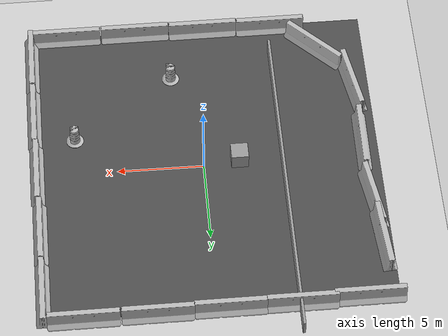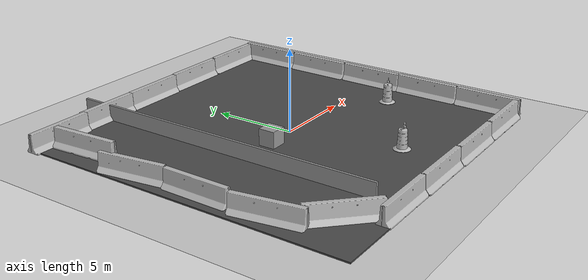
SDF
<sdf version="1.6">
 <world name="default">
  <light name="sun" type="directional">
   <pose>0 0 10 0 -0 0</pose>
   <diffuse>0.8 0.8 0.8 1</diffuse>
   <specular>0.2 0.2 0.2 1</specular>
   <attenuation>
    <range>1000</range>
    <constant>0.9</constant>
    <linear>0.01</linear>
    <quadratic>0.001</quadratic>
   </attenuation>
   <direction>-0.5 0.1 -0.9</direction>
  </light>
  <model name="Wall_01">
   <static>1</static>
   <link name="Wall_0">
    <collision name="Wall_0_Collision">
     <geometry><box><size>20 0.15 1</size></box></geometry>
     <pose>0 0 0.5 0 -0 0</pose>
    </collision>
    <visual name="Wall_0_Visual">
     <pose>0 0 0.5 0 -0 0</pose>
     <geometry><box><size>20 0.15 1</size></box></geometry>
     <material>
      <script><uri>file://media/materials/scripts/gazebo.material</uri><name>Gazebo/Grey</name></script>
      <ambient>1 1 1 1</ambient>
     </material>
    </visual>
    <pose>-4.6 1.725 0 0 0 -1.5708</pose>
   </link>
  </model>
  <model name="ground_plane">
   <static>1</static>
   <link name="link">
    <collision name="collision">
     <geometry><plane><normal>0 0 1</normal><size>100 100</size></plane></geometry>
     <surface><friction><ode><mu>100</mu><mu2>50</mu2></ode></friction></surface>
    </collision>
    <visual name="visual">
     <cast_shadows>0</cast_shadows>
     <geometry><plane><normal>0 0 1</normal><size>100 100</size></plane></geometry>
     <material>
      <script><uri>file://media/materials/scripts/gazebo.material</uri><name>Gazebo/Grey</name></script>
     </material>
    </visual>
    <velocity_decay><linear>0</linear><angular>0</angular></velocity_decay>
   </link>
  </model>
  <physics name="default_physics" default="0" type="ode">
   <max_step_size>0.01</max_step_size>
   <real_time_factor>1</real_time_factor>
   <real_time_update_rate>100</real_time_update_rate>
  </physics>
  <scene><ambient>0.4 0.4 0.4 1</ambient><background>0.7 0.7 0.7 1</background><shadows>1</shadows></scene>
  <model name="jersey_barrier">
   <static>1</static>
   <link name="link">
    <visual name="visual">
     <geometry><mesh><uri>model://jersey_barrier/meshes/jersey_barrier.dae</uri></mesh></geometry>
    </visual>
    <collision name="upright">
     <pose>0 0 0.5715 0 -0 0</pose>
     <geometry><box><size>4.06542 0.3063 1.143</size></box></geometry>
    </collision>
    <collision name="base">
     <pose>0 0 0.032258 0 -0 0</pose>
     <geometry><box><size>4.06542 0.8107 0.064516</size></box></geometry>
    </collision>
    <collision name="base2">
     <pose>0 0 0.1 0 -0 0</pose>
     <geometry><box><size>4.06542 0.65 0.1</size></box></geometry>
    </collision>
    <collision name="base3">
     <pose>0 0 0.2 0 -0 0</pose>
     <geometry><box><size>4.06542 0.5 0.1</size></box></geometry>
    </collision>
    <collision name="left-angle">
     <pose>0 -0.224 0.2401 0.9 -0 0</pose>
     <geometry><box><size>4.06542 0.5 0.064516</size></box></geometry>
    </collision>
    <collision name="right-angle">
     <pose>0 0.224 0.2401 -0.9 0 0</pose>
     <geometry><box><size>4.06542 0.5 0.064516</size></box></geometry>
    </collision>
    <velocity_decay><linear>0</linear><angular>0</angular></velocity_decay>
   </link>
   <pose>-4.80542 -9.81056 0 0 -0 0</pose>
  </model>
  <model name="jersey_barrier_0">
   <static>1</static>
   <link name="link">
    <visual name="visual">
     <geometry><mesh><uri>model://jersey_barrier/meshes/jersey_barrier.dae</uri></mesh></geometry>
    </visual>
    <collision name="upright">
     <pose>0 0 0.5715 0 -0 0</pose>
     <geometry><box><size>4.06542 0.3063 1.143</size></box></geometry>
    </collision>
    <collision name="base">
     <pose>0 0 0.032258 0 -0 0</pose>
     <geometry><box><size>4.06542 0.8107 0.064516</size></box></geometry>
    </collision>
    <collision name="base2">
     <pose>0 0 0.1 0 -0 0</pose>
     <geometry><box><size>4.06542 0.65 0.1</size></box></geometry>
    </collision>
    <collision name="base3">
     <pose>0 0 0.2 0 -0 0</pose>
     <geometry><box><size>4.06542 0.5 0.1</size></box></geometry>
    </collision>
    <collision name="left-angle">
     <pose>0 -0.224 0.2401 0.9 -0 0</pose>
     <geometry><box><size>4.06542 0.5 0.064516</size></box></geometry>
    </collision>
    <collision name="right-angle">
     <pose>0 0.224 0.2401 -0.9 0 0</pose>
     <geometry><box><size>4.06542 0.5 0.064516</size></box></geometry>
    </collision>
    <velocity_decay><linear>0</linear><angular>0</angular></velocity_decay>
   </link>
   <pose>-0.718563 -9.84902 0 0 -0 0</pose>
  </model>
  <model name="jersey_barrier_1">
   <static>1</static>
   <link name="link">
    <visual name="visual">
     <geometry><mesh><uri>model://jersey_barrier/meshes/jersey_barrier.dae</uri></mesh></geometry>
    </visual>
    <collision name="upright">
     <pose>0 0 0.5715 0 -0 0</pose>
     <geometry><box><size>4.06542 0.3063 1.143</size></box></geometry>
    </collision>
    <collision name="base">
     <pose>0 0 0.032258 0 -0 0</pose>
     <geometry><box><size>4.06542 0.8107 0.064516</size></box></geometry>
    </collision>
    <collision name="base2">
     <pose>0 0 0.1 0 -0 0</pose>
     <geometry><box><size>4.06542 0.65 0.1</size></box></geometry>
    </collision>
    <collision name="base3">
     <pose>0 0 0.2 0 -0 0</pose>
     <geometry><box><size>4.06542 0.5 0.1</size></box></geometry>
    </collision>
    <collision name="left-angle">
     <pose>0 -0.224 0.2401 0.9 -0 0</pose>
     <geometry><box><size>4.06542 0.5 0.064516</size></box></geometry>
    </collision>
    <collision name="right-angle">
     <pose>0 0.224 0.2401 -0.9 0 0</pose>
     <geometry><box><size>4.06542 0.5 0.064516</size></box></geometry>
    </collision>
    <velocity_decay><linear>0</linear><angular>0</angular></velocity_decay>
   </link>
   <pose>3.37219 -9.89534 0 0 -0 0</pose>
  </model>
  <model name="jersey_barrier_2">
   <static>1</static>
   <link name="link">
    <visual name="visual">
     <geometry><mesh><uri>model://jersey_barrier/meshes/jersey_barrier.dae</uri></mesh></geometry>
    </visual>
    <collision name="upright">
     <pose>0 0 0.5715 0 -0 0</pose>
     <geometry><box><size>4.06542 0.3063 1.143</size></box></geometry>
    </collision>
    <collision name="base">
     <pose>0 0 0.032258 0 -0 0</pose>
     <geometry><box><size>4.06542 0.8107 0.064516</size></box></geometry>
    </collision>
    <collision name="base2">
     <pose>0 0 0.1 0 -0 0</pose>
     <geometry><box><size>4.06542 0.65 0.1</size></box></geometry>
    </collision>
    <collision name="base3">
     <pose>0 0 0.2 0 -0 0</pose>
     <geometry><box><size>4.06542 0.5 0.1</size></box></geometry>
    </collision>
    <collision name="left-angle">
     <pose>0 -0.224 0.2401 0.9 -0 0</pose>
     <geometry><box><size>4.06542 0.5 0.064516</size></box></geometry>
    </collision>
    <collision name="right-angle">
     <pose>0 0.224 0.2401 -0.9 0 0</pose>
     <geometry><box><size>4.06542 0.5 0.064516</size></box></geometry>
    </collision>
    <velocity_decay><linear>0</linear><angular>0</angular></velocity_decay>
   </link>
   <pose>7.50493 -9.88533 0 0 -0 0</pose>
  </model>
  <model name="jersey_barrier_3">
   <static>1</static>
   <link name="link">
    <visual name="visual">
     <geometry><mesh><uri>model://jersey_barrier/meshes/jersey_barrier.dae</uri></mesh></geometry>
    </visual>
    <collision name="upright">
     <pose>0 0 0.5715 0 -0 0</pose>
     <geometry><box><size>4.06542 0.3063 1.143</size></box></geometry>
    </collision>
    <collision name="base">
     <pose>0 0 0.032258 0 -0 0</pose>
     <geometry><box><size>4.06542 0.8107 0.064516</size></box></geometry>
    </collision>
    <collision name="base2">
     <pose>0 0 0.1 0 -0 0</pose>
     <geometry><box><size>4.06542 0.65 0.1</size></box></geometry>
    </collision>
    <collision name="base3">
     <pose>0 0 0.2 0 -0 0</pose>
     <geometry><box><size>4.06542 0.5 0.1</size></box></geometry>
    </collision>
    <collision name="left-angle">
     <pose>0 -0.224 0.2401 0.9 -0 0</pose>
     <geometry><box><size>4.06542 0.5 0.064516</size></box></geometry>
    </collision>
    <collision name="right-angle">
     <pose>0 0.224 0.2401 -0.9 0 0</pose>
     <geometry><box><size>4.06542 0.5 0.064516</size></box></geometry>
    </collision>
    <velocity_decay><linear>0</linear><angular>0</angular></velocity_decay>
   </link>
   <pose>-4.71095 9.93241 0 0 -0 0</pose>
  </model>
  <model name="jersey_barrier_4">
   <static>1</static>
   <link name="link">
    <visual name="visual">
     <geometry><mesh><uri>model://jersey_barrier/meshes/jersey_barrier.dae</uri></mesh></geometry>
    </visual>
    <collision name="upright">
     <pose>0 0 0.5715 0 -0 0</pose>
     <geometry><box><size>4.06542 0.3063 1.143</size></box></geometry>
    </collision>
    <collision name="base">
     <pose>0 0 0.032258 0 -0 0</pose>
     <geometry><box><size>4.06542 0.8107 0.064516</size></box></geometry>
    </collision>
    <collision name="base2">
     <pose>0 0 0.1 0 -0 0</pose>
     <geometry><box><size>4.06542 0.65 0.1</size></box></geometry>
    </collision>
    <collision name="base3">
     <pose>0 0 0.2 0 -0 0</pose>
     <geometry><box><size>4.06542 0.5 0.1</size></box></geometry>
    </collision>
    <collision name="left-angle">
     <pose>0 -0.224 0.2401 0.9 -0 0</pose>
     <geometry><box><size>4.06542 0.5 0.064516</size></box></geometry>
    </collision>
    <collision name="right-angle">
     <pose>0 0.224 0.2401 -0.9 0 0</pose>
     <geometry><box><size>4.06542 0.5 0.064516</size></box></geometry>
    </collision>
    <velocity_decay><linear>0</linear><angular>0</angular></velocity_decay>
   </link>
   <pose>-0.693632 9.96519 0 0 -0 0</pose>
  </model>
  <model name="jersey_barrier_5">
   <static>1</static>
   <link name="link">
    <visual name="visual">
     <geometry><mesh><uri>model://jersey_barrier/meshes/jersey_barrier.dae</uri></mesh></geometry>
    </visual>
    <collision name="upright">
     <pose>0 0 0.5715 0 -0 0</pose>
     <geometry><box><size>4.06542 0.3063 1.143</size></box></geometry>
    </collision>
    <collision name="base">
     <pose>0 0 0.032258 0 -0 0</pose>
     <geometry><box><size>4.06542 0.8107 0.064516</size></box></geometry>
    </collision>
    <collision name="base2">
     <pose>0 0 0.1 0 -0 0</pose>
     <geometry><box><size>4.06542 0.65 0.1</size></box></geometry>
    </collision>
    <collision name="base3">
     <pose>0 0 0.2 0 -0 0</pose>
     <geometry><box><size>4.06542 0.5 0.1</size></box></geometry>
    </collision>
    <collision name="left-angle">
     <pose>0 -0.224 0.2401 0.9 -0 0</pose>
     <geometry><box><size>4.06542 0.5 0.064516</size></box></geometry>
    </collision>
    <collision name="right-angle">
     <pose>0 0.224 0.2401 -0.9 0 0</pose>
     <geometry><box><size>4.06542 0.5 0.064516</size></box></geometry>
    </collision>
    <velocity_decay><linear>0</linear><angular>0</angular></velocity_decay>
   </link>
   <pose>3.35429 10.0303 0 0 -0 0</pose>
  </model>
  <model name="jersey_barrier_6">
   <static>1</static>
   <link name="link">
    <visual name="visual">
     <geometry><mesh><uri>model://jersey_barrier/meshes/jersey_barrier.dae</uri></mesh></geometry>
    </visual>
    <collision name="upright">
     <pose>0 0 0.5715 0 -0 0</pose>
     <geometry><box><size>4.06542 0.3063 1.143</size></box></geometry>
    </collision>
    <collision name="base">
     <pose>0 0 0.032258 0 -0 0</pose>
     <geometry><box><size>4.06542 0.8107 0.064516</size></box></geometry>
    </collision>
    <collision name="base2">
     <pose>0 0 0.1 0 -0 0</pose>
     <geometry><box><size>4.06542 0.65 0.1</size></box></geometry>
    </collision>
    <collision name="base3">
     <pose>0 0 0.2 0 -0 0</pose>
     <geometry><box><size>4.06542 0.5 0.1</size></box></geometry>
    </collision>
    <collision name="left-angle">
     <pose>0 -0.224 0.2401 0.9 -0 0</pose>
     <geometry><box><size>4.06542 0.5 0.064516</size></box></geometry>
    </collision>
    <collision name="right-angle">
     <pose>0 0.224 0.2401 -0.9 0 0</pose>
     <geometry><box><size>4.06542 0.5 0.064516</size></box></geometry>
    </collision>
    <velocity_decay><linear>0</linear><angular>0</angular></velocity_decay>
   </link>
   <pose>7.48175 10.0592 0 0 -0 0</pose>
  </model>
  <model name="jersey_barrier_9">
   <static>1</static>
   <link name="link">
    <visual name="visual">
     <geometry><mesh><uri>model://jersey_barrier/meshes/jersey_barrier.dae</uri></mesh></geometry>
    </visual>
    <collision name="upright">
     <pose>0 0 0.5715 0 -0 0</pose>
     <geometry><box><size>4.06542 0.3063 1.143</size></box></geometry>
    </collision>
    <collision name="base">
     <pose>0 0 0.032258 0 -0 0</pose>
     <geometry><box><size>4.06542 0.8107 0.064516</size></box></geometry>
    </collision>
    <collision name="base2">
     <pose>0 0 0.1 0 -0 0</pose>
     <geometry><box><size>4.06542 0.65 0.1</size></box></geometry>
    </collision>
    <collision name="base3">
     <pose>0 0 0.2 0 -0 0</pose>
     <geometry><box><size>4.06542 0.5 0.1</size></box></geometry>
    </collision>
    <collision name="left-angle">
     <pose>0 -0.224 0.2401 0.9 -0 0</pose>
     <geometry><box><size>4.06542 0.5 0.064516</size></box></geometry>
    </collision>
    <collision name="right-angle">
     <pose>0 0.224 0.2401 -0.9 0 0</pose>
     <geometry><box><size>4.06542 0.5 0.064516</size></box></geometry>
    </collision>
    <velocity_decay><linear>0</linear><angular>0</angular></velocity_decay>
   </link>
   <pose>-9.27794 -5.09766 0 0 0 -1.4</pose>
  </model>
  <model name="jersey_barrier_10">
   <static>1</static>
   <link name="link">
    <visual name="visual">
     <geometry><mesh><uri>model://jersey_barrier/meshes/jersey_barrier.dae</uri></mesh></geometry>
    </visual>
    <collision name="upright">
     <pose>0 0 0.5715 0 -0 0</pose>
     <geometry><box><size>4.06542 0.3063 1.143</size></box></geometry>
    </collision>
    <collision name="base">
     <pose>0 0 0.032258 0 -0 0</pose>
     <geometry><box><size>4.06542 0.8107 0.064516</size></box></geometry>
    </collision>
    <collision name="base2">
     <pose>0 0 0.1 0 -0 0</pose>
     <geometry><box><size>4.06542 0.65 0.1</size></box></geometry>
    </collision>
    <collision name="base3">
     <pose>0 0 0.2 0 -0 0</pose>
     <geometry><box><size>4.06542 0.5 0.1</size></box></geometry>
    </collision>
    <collision name="left-angle">
     <pose>0 -0.224 0.2401 0.9 -0 0</pose>
     <geometry><box><size>4.06542 0.5 0.064516</size></box></geometry>
    </collision>
    <collision name="right-angle">
     <pose>0 0.224 0.2401 -0.9 0 0</pose>
     <geometry><box><size>4.06542 0.5 0.064516</size></box></geometry>
    </collision>
    <velocity_decay><linear>0</linear><angular>0</angular></velocity_decay>
   </link>
   <pose>-9.36321 -0.883079 0 0 -0 1.56</pose>
  </model>
  <model name="jersey_barrier_11">
   <static>1</static>
   <link name="link">
    <visual name="visual">
     <geometry><mesh><uri>model://jersey_barrier/meshes/jersey_barrier.dae</uri></mesh></geometry>
    </visual>
    <collision name="upright">
     <pose>0 0 0.5715 0 -0 0</pose>
     <geometry><box><size>4.06542 0.3063 1.143</size></box></geometry>
    </collision>
    <collision name="base">
     <pose>0 0 0.032258 0 -0 0</pose>
     <geometry><box><size>4.06542 0.8107 0.064516</size></box></geometry>
    </collision>
    <collision name="base2">
     <pose>0 0 0.1 0 -0 0</pose>
     <geometry><box><size>4.06542 0.65 0.1</size></box></geometry>
    </collision>
    <collision name="base3">
     <pose>0 0 0.2 0 -0 0</pose>
     <geometry><box><size>4.06542 0.5 0.1</size></box></geometry>
    </collision>
    <collision name="left-angle">
     <pose>0 -0.224 0.2401 0.9 -0 0</pose>
     <geometry><box><size>4.06542 0.5 0.064516</size></box></geometry>
    </collision>
    <collision name="right-angle">
     <pose>0 0.224 0.2401 -0.9 0 0</pose>
     <geometry><box><size>4.06542 0.5 0.064516</size></box></geometry>
    </collision>
    <velocity_decay><linear>0</linear><angular>0</angular></velocity_decay>
   </link>
   <pose>-9.5335 3.23481 0 0 -0 1.72</pose>
  </model>
  <model name="jersey_barrier_12">
   <static>1</static>
   <link name="link">
    <visual name="visual">
     <geometry><mesh><uri>model://jersey_barrier/meshes/jersey_barrier.dae</uri></mesh></geometry>
    </visual>
    <collision name="upright">
     <pose>0 0 0.5715 0 -0 0</pose>
     <geometry><box><size>4.06542 0.3063 1.143</size></box></geometry>
    </collision>
    <collision name="base">
     <pose>0 0 0.032258 0 -0 0</pose>
     <geometry><box><size>4.06542 0.8107 0.064516</size></box></geometry>
    </collision>
    <collision name="base2">
     <pose>0 0 0.1 0 -0 0</pose>
     <geometry><box><size>4.06542 0.65 0.1</size></box></geometry>
    </collision>
    <collision name="base3">
     <pose>0 0 0.2 0 -0 0</pose>
     <geometry><box><size>4.06542 0.5 0.1</size></box></geometry>
    </collision>
    <collision name="left-angle">
     <pose>0 -0.224 0.2401 0.9 -0 0</pose>
     <geometry><box><size>4.06542 0.5 0.064516</size></box></geometry>
    </collision>
    <collision name="right-angle">
     <pose>0 0.224 0.2401 -0.9 0 0</pose>
     <geometry><box><size>4.06542 0.5 0.064516</size></box></geometry>
    </collision>
    <velocity_decay><linear>0</linear><angular>0</angular></velocity_decay>
   </link>
   <pose>9.66231 -8.08123 0 0 -0 1.56</pose>
  </model>
  <model name="jersey_barrier_14">
   <static>1</static>
   <link name="link">
    <visual name="visual">
     <geometry><mesh><uri>model://jersey_barrier/meshes/jersey_barrier.dae</uri></mesh></geometry>
    </visual>
    <collision name="upright">
     <pose>0 0 0.5715 0 -0 0</pose>
     <geometry><box><size>4.06542 0.3063 1.143</size></box></geometry>
    </collision>
    <collision name="base">
     <pose>0 0 0.032258 0 -0 0</pose>
     <geometry><box><size>4.06542 0.8107 0.064516</size></box></geometry>
    </collision>
    <collision name="base2">
     <pose>0 0 0.1 0 -0 0</pose>
     <geometry><box><size>4.06542 0.65 0.1</size></box></geometry>
    </collision>
    <collision name="base3">
     <pose>0 0 0.2 0 -0 0</pose>
     <geometry><box><size>4.06542 0.5 0.1</size></box></geometry>
    </collision>
    <collision name="left-angle">
     <pose>0 -0.224 0.2401 0.9 -0 0</pose>
     <geometry><box><size>4.06542 0.5 0.064516</size></box></geometry>
    </collision>
    <collision name="right-angle">
     <pose>0 0.224 0.2401 -0.9 0 0</pose>
     <geometry><box><size>4.06542 0.5 0.064516</size></box></geometry>
    </collision>
    <velocity_decay><linear>0</linear><angular>0</angular></velocity_decay>
   </link>
   <pose>-9.65 6.48223 0.580917 0 -0 1.64415</pose>
  </model>
  <model name="jersey_barrier_15">
   <static>1</static>
   <link name="link">
    <visual name="visual">
     <geometry><mesh><uri>model://jersey_barrier/meshes/jersey_barrier.dae</uri></mesh></geometry>
    </visual>
    <collision name="upright">
     <pose>0 0 0.5715 0 -0 0</pose>
     <geometry><box><size>4.06542 0.3063 1.143</size></box></geometry>
    </collision>
    <collision name="base">
     <pose>0 0 0.032258 0 -0 0</pose>
     <geometry><box><size>4.06542 0.8107 0.064516</size></box></geometry>
    </collision>
    <collision name="base2">
     <pose>0 0 0.1 0 -0 0</pose>
     <geometry><box><size>4.06542 0.65 0.1</size></box></geometry>
    </collision>
    <collision name="base3">
     <pose>0 0 0.2 0 -0 0</pose>
     <geometry><box><size>4.06542 0.5 0.1</size></box></geometry>
    </collision>
    <collision name="left-angle">
     <pose>0 -0.224 0.2401 0.9 -0 0</pose>
     <geometry><box><size>4.06542 0.5 0.064516</size></box></geometry>
    </collision>
    <collision name="right-angle">
     <pose>0 0.224 0.2401 -0.9 0 0</pose>
     <geometry><box><size>4.06542 0.5 0.064516</size></box></geometry>
    </collision>
    <velocity_decay><linear>0</linear><angular>0</angular></velocity_decay>
   </link>
   <pose>-7.33465 -8.04516 0 0 -0 2.36</pose>
  </model>
  <model name="Construction Barrel">
   <link name="link">
    <inertial>
     <pose>0 0 0.4 0 -0 0</pose>
     <mass>500</mass>
     <inertia><ixx>51.2096</ixx><iyy>51.2096</iyy><izz>25</izz><ixy>0</ixy><ixz>0</ixz><iyz>0</iyz></inertia>
    </inertial>
    <collision name="collision">
     <geometry><mesh><uri>model://construction_barrel/meshes/construction_barrel.dae</uri></mesh></geometry>
    </collision>
    <visual name="visual">
     <geometry><mesh><uri>model://construction_barrel/meshes/construction_barrel.dae</uri></mesh></geometry>
    </visual>
    <velocity_decay><linear>0</linear><angular>0</angular></velocity_decay>
   </link>
   <pose>7.37004 -2.39537 0.049886 -0.000111 -0.000447 0.378154</pose>
   <static>0</static>
  </model>
  <model name="Construction Barrel_0">
   <link name="link">
    <inertial>
     <pose>0 0 0.4 0 -0 0</pose>
     <mass>500</mass>
     <inertia><ixx>51.2096</ixx><iyy>51.2096</iyy><izz>25</izz><ixy>0</ixy><ixz>0</ixz><iyz>0</iyz></inertia>
    </inertial>
    <collision name="collision">
     <geometry><mesh><uri>model://construction_barrel/meshes/construction_barrel.dae</uri></mesh></geometry>
    </collision>
    <visual name="visual">
     <geometry><mesh><uri>model://construction_barrel/meshes/construction_barrel.dae</uri></mesh></geometry>
    </visual>
    <velocity_decay><linear>0</linear><angular>0</angular></velocity_decay>
   </link>
   <pose>1.45188 -6.51098 0.049913 -0.00017 -0.000347 -0.000381</pose>
   <static>0</static>
  </model>
  <model name="asphalt_plane">
   <static>1</static>
   <link name="link">
    <collision name="collision"><geometry><box><size>20 20 0.1</size></box></geometry></collision>
    <visual name="visual">
     <cast_shadows>0</cast_shadows>
     <geometry><box><size>20 20 0.1</size></box></geometry>
     <material>
      <script>
       <uri>model://asphalt_plane/materials/scripts</uri>
       <uri>model://asphalt_plane/materials/textures</uri>
       <name>vrc/asphalt</name>
      </script>
     </material>
    </visual>
    <velocity_decay><linear>0</linear><angular>0</angular></velocity_decay>
   </link>
   <pose>-0.252419 -0.159416 0 0 -0 0</pose>
  </model>
  <gravity>0 0 -9.8</gravity>
  <magnetic_field>6e-06 2.3e-05 -4.2e-05</magnetic_field>
  <atmosphere type="adiabatic"/>
  <spherical_coordinates>
   <surface_model>EARTH_WGS84</surface_model>
   <latitude_deg>0</latitude_deg>
   <longitude_deg>0</longitude_deg>
   <elevation>0</elevation>
   <heading_deg>0</heading_deg>
  </spherical_coordinates>
  <model name="jersey_barrier_12_clone">
   <static>1</static>
   <link name="link">
    <visual name="visual">
     <geometry><mesh><uri>model://jersey_barrier/meshes/jersey_barrier.dae</uri></mesh></geometry>
    </visual>
    <collision name="upright">
     <pose>0 0 0.5715 0 -0 0</pose>
     <geometry><box><size>4.06542 0.3063 1.143</size></box></geometry>
    </collision>
    <collision name="base">
     <pose>0 0 0.032258 0 -0 0</pose>
     <geometry><box><size>4.06542 0.8107 0.064516</size></box></geometry>
    </collision>
    <collision name="base2">
     <pose>0 0 0.1 0 -0 0</pose>
     <geometry><box><size>4.06542 0.65 0.1</size></box></geometry>
    </collision>
    <collision name="base3">
     <pose>0 0 0.2 0 -0 0</pose>
     <geometry><box><size>4.06542 0.5 0.1</size></box></geometry>
    </collision>
    <collision name="left-angle">
     <pose>0 -0.224 0.2401 0.9 -0 0</pose>
     <geometry><box><size>4.06542 0.5 0.064516</size></box></geometry>
    </collision>
    <collision name="right-angle">
     <pose>0 0.224 0.2401 -0.9 0 0</pose>
     <geometry><box><size>4.06542 0.5 0.064516</size></box></geometry>
    </collision>
    <velocity_decay><linear>0</linear><angular>0</angular></velocity_decay>
   </link>
   <pose>9.69789 -3.98159 0 0 -0 1.56</pose>
  </model>
  <model name="jersey_barrier_12_clone_0">
   <static>1</static>
   <link name="link">
    <visual name="visual">
     <geometry><mesh><uri>model://jersey_barrier/meshes/jersey_barrier.dae</uri></mesh></geometry>
    </visual>
    <collision name="upright">
     <pose>0 0 0.5715 0 -0 0</pose>
     <geometry><box><size>4.06542 0.3063 1.143</size></box></geometry>
    </collision>
    <collision name="base">
     <pose>0 0 0.032258 0 -0 0</pose>
     <geometry><box><size>4.06542 0.8107 0.064516</size></box></geometry>
    </collision>
    <collision name="base2">
     <pose>0 0 0.1 0 -0 0</pose>
     <geometry><box><size>4.06542 0.65 0.1</size></box></geometry>
    </collision>
    <collision name="base3">
     <pose>0 0 0.2 0 -0 0</pose>
     <geometry><box><size>4.06542 0.5 0.1</size></box></geometry>
    </collision>
    <collision name="left-angle">
     <pose>0 -0.224 0.2401 0.9 -0 0</pose>
     <geometry><box><size>4.06542 0.5 0.064516</size></box></geometry>
    </collision>
    <collision name="right-angle">
     <pose>0 0.224 0.2401 -0.9 0 0</pose>
     <geometry><box><size>4.06542 0.5 0.064516</size></box></geometry>
    </collision>
    <velocity_decay><linear>0</linear><angular>0</angular></velocity_decay>
   </link>
   <pose>9.68226 0.063707 0 0 -0 1.56</pose>
  </model>
  <model name="jersey_barrier_12_clone_1">
   <static>1</static>
   <link name="link">
    <visual name="visual">
     <geometry><mesh><uri>model://jersey_barrier/meshes/jersey_barrier.dae</uri></mesh></geometry>
    </visual>
    <collision name="upright">
     <pose>0 0 0.5715 0 -0 0</pose>
     <geometry><box><size>4.06542 0.3063 1.143</size></box></geometry>
    </collision>
    <collision name="base">
     <pose>0 0 0.032258 0 -0 0</pose>
     <geometry><box><size>4.06542 0.8107 0.064516</size></box></geometry>
    </collision>
    <collision name="base2">
     <pose>0 0 0.1 0 -0 0</pose>
     <geometry><box><size>4.06542 0.65 0.1</size></box></geometry>
    </collision>
    <collision name="base3">
     <pose>0 0 0.2 0 -0 0</pose>
     <geometry><box><size>4.06542 0.5 0.1</size></box></geometry>
    </collision>
    <collision name="left-angle">
     <pose>0 -0.224 0.2401 0.9 -0 0</pose>
     <geometry><box><size>4.06542 0.5 0.064516</size></box></geometry>
    </collision>
    <collision name="right-angle">
     <pose>0 0.224 0.2401 -0.9 0 0</pose>
     <geometry><box><size>4.06542 0.5 0.064516</size></box></geometry>
    </collision>
    <velocity_decay><linear>0</linear><angular>0</angular></velocity_decay>
   </link>
   <pose>9.65612 4.16324 0 0 -0 1.56</pose>
  </model>
  <model name="jersey_barrier_12_clone_2">
   <static>1</static>
   <link name="link">
    <visual name="visual">
     <geometry><mesh><uri>model://jersey_barrier/meshes/jersey_barrier.dae</uri></mesh></geometry>
    </visual>
    <collision name="upright">
     <pose>0 0 0.5715 0 -0 0</pose>
     <geometry><box><size>4.06542 0.3063 1.143</size></box></geometry>
    </collision>
    <collision name="base">
     <pose>0 0 0.032258 0 -0 0</pose>
     <geometry><box><size>4.06542 0.8107 0.064516</size></box></geometry>
    </collision>
    <collision name="base2">
     <pose>0 0 0.1 0 -0 0</pose>
     <geometry><box><size>4.06542 0.65 0.1</size></box></geometry>
    </collision>
    <collision name="base3">
     <pose>0 0 0.2 0 -0 0</pose>
     <geometry><box><size>4.06542 0.5 0.1</size></box></geometry>
    </collision>
    <collision name="left-angle">
     <pose>0 -0.224 0.2401 0.9 -0 0</pose>
     <geometry><box><size>4.06542 0.5 0.064516</size></box></geometry>
    </collision>
    <collision name="right-angle">
     <pose>0 0.224 0.2401 -0.9 0 0</pose>
     <geometry><box><size>4.06542 0.5 0.064516</size></box></geometry>
    </collision>
    <velocity_decay><linear>0</linear><angular>0</angular></velocity_decay>
   </link>
   <pose>9.68933 8.25085 0 0 -0 1.56</pose>
  </model>
  <model name="jersey_barrier_3_clone">
   <static>1</static>
   <link name="link">
    <visual name="visual">
     <geometry><mesh><uri>model://jersey_barrier/meshes/jersey_barrier.dae</uri></mesh></geometry>
    </visual>
    <collision name="upright">
     <pose>0 0 0.5715 0 -0 0</pose>
     <geometry><box><size>4.06542 0.3063 1.143</size></box></geometry>
    </collision>
    <collision name="base">
     <pose>0 0 0.032258 0 -0 0</pose>
     <geometry><box><size>4.06542 0.8107 0.064516</size></box></geometry>
    </collision>
    <collision name="base2">
     <pose>0 0 0.1 0 -0 0</pose>
     <geometry><box><size>4.06542 0.65 0.1</size></box></geometry>
    </collision>
    <collision name="base3">
     <pose>0 0 0.2 0 -0 0</pose>
     <geometry><box><size>4.06542 0.5 0.1</size></box></geometry>
    </collision>
    <collision name="left-angle">
     <pose>0 -0.224 0.2401 0.9 -0 0</pose>
     <geometry><box><size>4.06542 0.5 0.064516</size></box></geometry>
    </collision>
    <collision name="right-angle">
     <pose>0 0.224 0.2401 -0.9 0 0</pose>
     <geometry><box><size>4.06542 0.5 0.064516</size></box></geometry>
    </collision>
    <velocity_decay><linear>0</linear><angular>0</angular></velocity_decay>
   </link>
   <pose>-8.49087 9.82565 0 0 -0 0</pose>
  </model>
  <model name="unit_box">
   <pose>-2.10509 -0.215442 0.54967 -0.00066 -0 -9e-06</pose>
   <link name="link">
    <inertial>
     <mass>1</mass>
     <inertia>
      <ixx>0.166667</ixx>
      <ixy>0</ixy>
      <ixz>0</ixz>
      <iyy>0.166667</iyy>
      <iyz>0</iyz>
      <izz>0.166667</izz>
     </inertia>
    </inertial>
    <collision name="collision"><geometry><box><size>1 1 1</size></box></geometry></collision>
    <visual name="visual">
     <geometry><box><size>1 1 1</size></box></geometry>
     <material>
      <script><name>Gazebo/Grey</name><uri>file://media/materials/scripts/gazebo.material</uri></script>
     </material>
    </visual>
   </link>
   <plugin name="random" filename="libvelset.so">
    <link>link</link>
    <initial_velocity>0 0.5 0</initial_velocity>
    <velocity_factor>0.5</velocity_factor>
    <update_period>5</update_period>
    <min_x>-10</min_x>
    <max_x>10</max_x>
    <min_y>-10</min_y>
    <max_y>10</max_y>
    <min_z>-1</min_z>
    <max_z>-1</max_z>
   </plugin>
  </model>
 </world>
</sdf>
